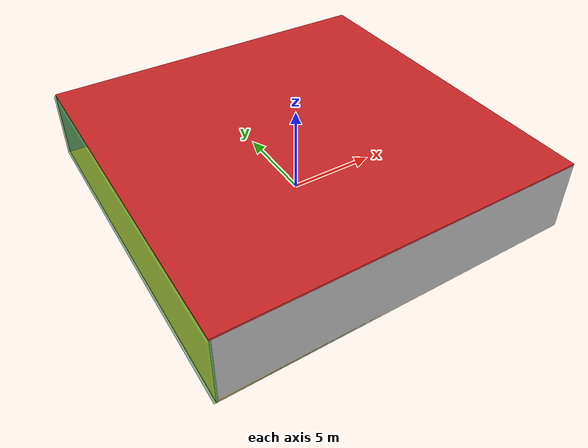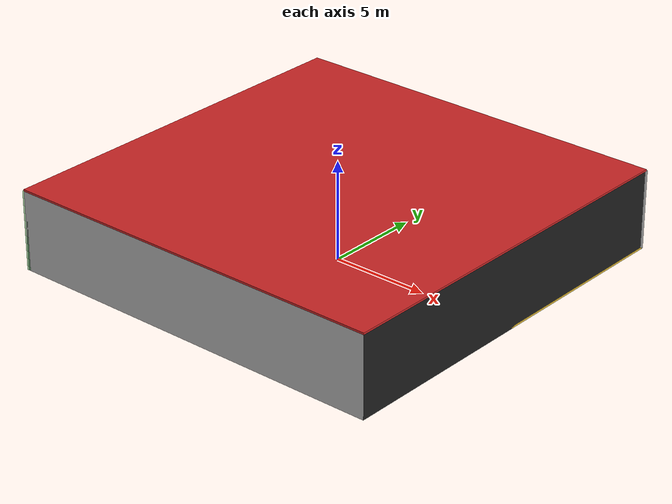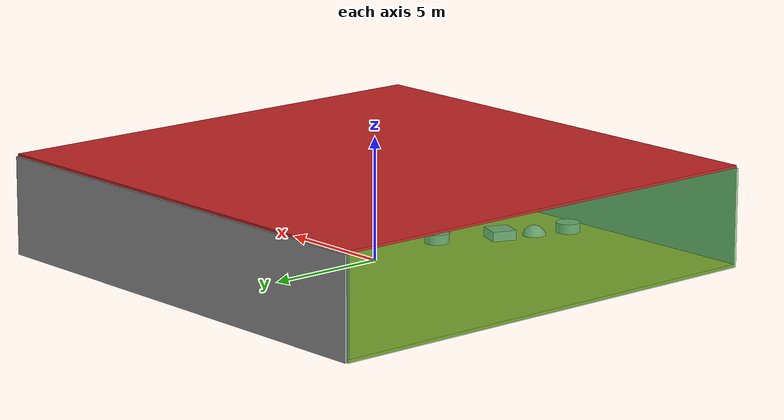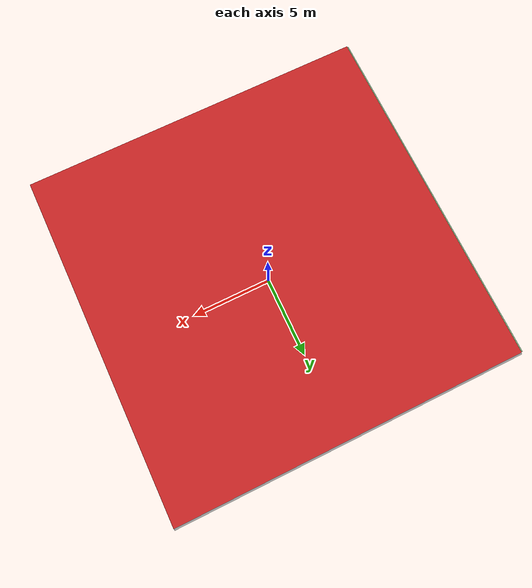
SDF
<sdf version="1.4">
 <world name="default">
  <physics type="ode">
   <max_step_size>0.001</max_step_size>
   <real_time_factor>1</real_time_factor>
   <real_time_update_rate>1000</real_time_update_rate>
   <gravity>0 0 -9.8</gravity>
  </physics>
  <scene><ambient>0.4 0.4 0.4 1</ambient><background>0.7 0.7 0.7 1</background><shadows>1</shadows></scene>
  <model name="Surrounding">
   <static>1</static>
   <link name="Ceiling">
    <collision name="Ceiling_Collision"><geometry><box><size>20 20 0.1</size></box></geometry></collision>
    <visual name="Ceiling_Visual">
     <geometry><box><size>20 20 0.1</size></box></geometry>
     <material>
      <script><uri>file://media/materials/scripts/gazebo.material</uri><name>Gazebo/RedBright</name></script>
     </material>
    </visual>
    <pose>0 0 4.05 0 0 0</pose>
   </link>
   <link name="Wall_South">
    <collision name="Wall_South_Collision">
     <geometry><box><size>20 0 4</size></box></geometry>
     <pose>0 0 2 0 -0 0</pose>
    </collision>
    <visual name="Wall_South_Visual">
     <pose>0 0 2 0 -0 0</pose>
     <geometry><box><size>20 0 4</size></box></geometry>
     <material>
      <script><uri>file://media/materials/scripts/gazebo.material</uri><name>Gazebo/LightOn</name></script>
     </material>
    </visual>
    <velocity_decay><linear>0</linear><angular>0</angular></velocity_decay>
    <pose>0 -10 0 0 -0 0</pose>
   </link>
   <link name="Wall_East">
    <collision name="Wall_21_Collision">
     <geometry><box><size>20 0 4</size></box></geometry>
     <pose>0 0 2 0 -0 0</pose>
    </collision>
    <visual name="Wall_21_Visual">
     <pose>0 0 2 0 -0 0</pose>
     <geometry><box><size>20 0 4</size></box></geometry>
     <material>
      <script><uri>file://media/materials/scripts/gazebo.material</uri><name>Gazebo/FlatBlack</name></script>
     </material>
    </visual>
    <velocity_decay><linear>0</linear><angular>0</angular></velocity_decay>
    <pose>10 0 0 0 -0 1.5708</pose>
   </link>
   <link name="Wall_North">
    <collision name="Wall_22_Collision">
     <geometry><box><size>20 0.2 4</size></box></geometry>
     <pose>0 0 2 0 -0 0</pose>
    </collision>
    <visual name="Wall_22_Visual">
     <pose>0 0 2 0 -0 0</pose>
     <geometry><box><size>20 0.2 4</size></box></geometry>
     <material>
      <script><uri>file://media/materials/scripts/gazebo.material</uri><name>Gazebo/GreyGradientSky</name></script>
     </material>
    </visual>
    <velocity_decay><linear>0</linear><angular>0</angular></velocity_decay>
    <pose>0 10 0 0 -0 0</pose>
   </link>
   <link name="Wall_West">
    <collision name="Wall_23_Collision">
     <geometry><box><size>20 0.2 4</size></box></geometry>
     <pose>0 0 2 0 -0 0</pose>
    </collision>
    <visual name="Wall_23_Visual">
     <pose>0 0 2 0 -0 0</pose>
     <geometry><box><size>20 0.2 4</size></box></geometry>
     <material>
      <script><uri>file://media/materials/scripts/gazebo.material</uri><name>Gazebo/GreenTransparent</name></script>
     </material>
    </visual>
    <velocity_decay><linear>0</linear><angular>0</angular></velocity_decay>
    <pose>-10 0 0 0 0 -1.5708</pose>
   </link>
   <link name="Ground_link">
    <collision name="collision">
     <pose>0 0 .05 0 -0 0</pose>
     <geometry><box><size>20 20 0.1</size></box></geometry>
    </collision>
    <visual name="visual">
     <pose>0 0 .05 0 -0 0</pose>
     <geometry><box><size>20 20 0.1</size></box></geometry>
     <material>
      <script><uri>file://media/materials/scripts/gazebo.material</uri><name>Gazebo/Gold</name></script>
     </material>
    </visual>
   </link>
   <static>1</static>
  </model>
  <spherical_coordinates>
   <surface_model>EARTH_WGS84</surface_model>
   <latitude_deg>0</latitude_deg>
   <longitude_deg>0</longitude_deg>
   <elevation>0</elevation>
   <heading_deg>0</heading_deg>
  </spherical_coordinates>
  <light name="lightball_0" type="diffuse">
   <diffuse>0.8 0.8 0.8 1</diffuse>
   <specular>0.2 0.2 0.2 1</specular>
   <attenuation>
    <range>100</range>
    <constant>0.7</constant>
    <linear>0.01</linear>
    <quadratic>0.001</quadratic>
   </attenuation>
   <direction>-0.5 0.1 -0.9</direction>
   <pose>-9.16770149812 2.51581660693 1.91776846579 0 0 0</pose>
  </light>
  <light name="lightball_1" type="diffuse">
   <diffuse>0.8 0.8 0.8 1</diffuse>
   <specular>0.2 0.2 0.2 1</specular>
   <attenuation>
    <range>100</range>
    <constant>0.7</constant>
    <linear>0.01</linear>
    <quadratic>0.001</quadratic>
   </attenuation>
   <direction>-0.5 0.1 -0.9</direction>
   <pose>6.05110673265 5.38903976124 0.500526147928 0 0 0</pose>
  </light>
  <light name="lightball_2" type="diffuse">
   <diffuse>0.8 0.8 0.8 1</diffuse>
   <specular>0.2 0.2 0.2 1</specular>
   <attenuation>
    <range>100</range>
    <constant>0.7</constant>
    <linear>0.01</linear>
    <quadratic>0.001</quadratic>
   </attenuation>
   <direction>-0.5 0.1 -0.9</direction>
   <pose>-8.58052432106 4.71871480036 1.89307048126 0 0 0</pose>
  </light>
  <light name="lightball_3" type="diffuse">
   <diffuse>0.8 0.8 0.8 1</diffuse>
   <specular>0.2 0.2 0.2 1</specular>
   <attenuation>
    <range>100</range>
    <constant>0.7</constant>
    <linear>0.01</linear>
    <quadratic>0.001</quadratic>
   </attenuation>
   <direction>-0.5 0.1 -0.9</direction>
   <pose>-6.24911337365 -2.7391387595 3.20815502493 0 0 0</pose>
  </light>
  <light name="lightball_4" type="diffuse">
   <diffuse>0.8 0.8 0.8 1</diffuse>
   <specular>0.2 0.2 0.2 1</specular>
   <attenuation>
    <range>100</range>
    <constant>0.7</constant>
    <linear>0.01</linear>
    <quadratic>0.001</quadratic>
   </attenuation>
   <direction>-0.5 0.1 -0.9</direction>
   <pose>6.51283153587 -7.69370661518 2.87907725618 0 0 0</pose>
  </light>
  <light name="lightball_5" type="diffuse">
   <diffuse>0.8 0.8 0.8 1</diffuse>
   <specular>0.2 0.2 0.2 1</specular>
   <attenuation>
    <range>100</range>
    <constant>0.7</constant>
    <linear>0.01</linear>
    <quadratic>0.001</quadratic>
   </attenuation>
   <direction>-0.5 0.1 -0.9</direction>
   <pose>4.79166378488 1.14975381521 2.054661033 0 0 0</pose>
  </light>
  <light name="lightball_6" type="diffuse">
   <diffuse>0.8 0.8 0.8 1</diffuse>
   <specular>0.2 0.2 0.2 1</specular>
   <attenuation>
    <range>100</range>
    <constant>0.7</constant>
    <linear>0.01</linear>
    <quadratic>0.001</quadratic>
   </attenuation>
   <direction>-0.5 0.1 -0.9</direction>
   <pose>-8.01257719659 2.32481457591 0.575242612397 0 0 0</pose>
  </light>
  <light name="lightball_7" type="diffuse">
   <diffuse>0.8 0.8 0.8 1</diffuse>
   <specular>0.2 0.2 0.2 1</specular>
   <attenuation>
    <range>100</range>
    <constant>0.7</constant>
    <linear>0.01</linear>
    <quadratic>0.001</quadratic>
   </attenuation>
   <direction>-0.5 0.1 -0.9</direction>
   <pose>-7.63248296177 -0.54159857029 2.42922225852 0 0 0</pose>
  </light>
  <light name="lightball_8" type="diffuse">
   <diffuse>0.8 0.8 0.8 1</diffuse>
   <specular>0.2 0.2 0.2 1</specular>
   <attenuation>
    <range>100</range>
    <constant>0.7</constant>
    <linear>0.01</linear>
    <quadratic>0.001</quadratic>
   </attenuation>
   <direction>-0.5 0.1 -0.9</direction>
   <pose>-7.42327094369 0.128956006986 2.26485832378 0 0 0</pose>
  </light>
  <light name="lightball_9" type="diffuse">
   <diffuse>0.8 0.8 0.8 1</diffuse>
   <specular>0.2 0.2 0.2 1</specular>
   <attenuation>
    <range>100</range>
    <constant>0.7</constant>
    <linear>0.01</linear>
    <quadratic>0.001</quadratic>
   </attenuation>
   <direction>-0.5 0.1 -0.9</direction>
   <pose>-9.44196896024 -9.96595761651 2.592869578 0 0 0</pose>
  </light>
  <light name="lightball_10" type="diffuse">
   <diffuse>0.8 0.8 0.8 1</diffuse>
   <specular>0.2 0.2 0.2 1</specular>
   <attenuation>
    <range>100</range>
    <constant>0.7</constant>
    <linear>0.01</linear>
    <quadratic>0.001</quadratic>
   </attenuation>
   <direction>-0.5 0.1 -0.9</direction>
   <pose>-1.5232240949 -5.48129304181 2.79213834666 0 0 0</pose>
  </light>
  <light name="lightball_11" type="diffuse">
   <diffuse>0.8 0.8 0.8 1</diffuse>
   <specular>0.2 0.2 0.2 1</specular>
   <attenuation>
    <range>100</range>
    <constant>0.7</constant>
    <linear>0.01</linear>
    <quadratic>0.001</quadratic>
   </attenuation>
   <direction>-0.5 0.1 -0.9</direction>
   <pose>6.27222480807 -4.91424244818 3.30119381937 0 0 0</pose>
  </light>
  <light name="lightball_12" type="diffuse">
   <diffuse>0.8 0.8 0.8 1</diffuse>
   <specular>0.2 0.2 0.2 1</specular>
   <attenuation>
    <range>100</range>
    <constant>0.7</constant>
    <linear>0.01</linear>
    <quadratic>0.001</quadratic>
   </attenuation>
   <direction>-0.5 0.1 -0.9</direction>
   <pose>3.98440947266 -2.07574169566 0.528784258674 0 0 0</pose>
  </light>
  <include>
   <uri>model://textured_shapes</uri>
   <pose>-1.49309646069 -7.26100520555 0 0 0 2.79168654576</pose>
  </include>
  <include>
   <uri>model://textured_shapes</uri>
   <pose>1.25239236576 -4.52137838609 0 0 0 0.792066360354</pose>
  </include>
  <include><uri>model://table</uri><pose>7.4298641686 2.2064289247 0 0 0 2.96191613603</pose></include>
 </world>
</sdf>

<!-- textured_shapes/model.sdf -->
<sdf version="1.6">
  <model name="textured_shapes">
    <pose>0 0 0.5 0 0 0</pose>
    <link name="box">
      <pose>0 -1.5 0 0 0 0</pose>
      <collision name="collision">
        <geometry>
          <box>
            <size>1 1 1</size>
          </box>
        </geometry>
      </collision>
      <visual name="visual">
        <geometry>
          <box>
            <size>1 1 1</size>
          </box>
        </geometry>
        <material>
          <script>
            <uri>model://../model_source/models/textured_shapes/materials/scripts</uri>
            <uri>model://../model_source/models/textured_shapes/materials/textures</uri>
            <name>TexturedShape/Squares</name>
          </script>
        </material>
      </visual>
    </link>
    <link name="sphere">
      <collision name="collision">
        <geometry>
          <sphere>
            <radius>0.5</radius>
          </sphere>
        </geometry>
      </collision>
      <visual name="visual">
        <geometry>
          <sphere>
            <radius>0.5</radius>
          </sphere>
        </geometry>
        <material>
          <script>
            <uri>model://../model_source/models/textured_shapes/materials/scripts</uri>
            <uri>model://../model_source/models/textured_shapes/materials/textures</uri>
            <name>TexturedShape/Squares</name>
          </script>
        </material>
      </visual>
    </link>
    <link name="cylinder">
      <pose>0 1.5 0 0 0 0</pose>
      <collision name="collision">
        <geometry>
          <cylinder>
            <radius>0.5</radius>
            <length>1</length>
          </cylinder>
        </geometry>
      </collision>
      <visual name="visual">
        <geometry>
          <cylinder>
            <radius>0.5</radius>
            <length>1</length>
          </cylinder>
        </geometry>
        <material>
          <script>
            <uri>model://../model_source/models/textured_shapes/materials/scripts</uri>
            <uri>model://../model_source/models/textured_shapes/materials/textures</uri>
            <name>TexturedShape/Squares</name>
          </script>
        </material>
      </visual>
    </link>
  </model>
</sdf>

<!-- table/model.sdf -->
<sdf version="1.5">
  <model name="table">
    <static>true</static>
    <link name="link">
      <collision name="surface">
        <pose>0 0 1.0 0 0 0</pose>
        <geometry>
          <box>
            <size>1.5 0.8 0.03</size>
          </box>
        </geometry>
        <surface>
          <friction>
            <ode>
              <mu>0.6</mu>
              <mu2>0.6</mu2>
            </ode>
          </friction>
        </surface>
      </collision>
      <visual name="visual1">
        <pose>0 0 1.0 0 0 0</pose>
        <geometry>
          <box>
            <size>1.5 0.8 0.03</size>
          </box>
        </geometry>
        <material>
          <script>
            <uri>model://media/materials/scripts/gazebo.material</uri>
            <name>Gazebo/Wood</name>
          </script>
        </material>
      </visual>
      <collision name="front_left_leg">
        <pose>0.68 0.38 0.5 0 0 0</pose>
        <geometry>
          <cylinder>
            <radius>0.02</radius>
            <length>1.0</length>
          </cylinder>
        </geometry>
      </collision>
      <visual name="front_left_leg">
        <pose>0.68 0.38 0.5 0 0 0</pose>
        <geometry>
          <cylinder>
            <radius>0.02</radius>
            <length>1.0</length>
          </cylinder>
        </geometry>
        <material>
          <script>
            <uri>model://media/materials/scripts/gazebo.material</uri>
            <name>Gazebo/Grey</name>
          </script>
        </material>
      </visual>
      <collision name="front_right_leg">
        <pose>0.68 -0.38 0.5 0 0 0</pose>
        <geometry>
          <cylinder>
            <radius>0.02</radius>
            <length>1.0</length>
          </cylinder>
        </geometry>
      </collision>
      <visual name="front_right_leg">
        <pose>0.68 -0.38 0.5 0 0 0</pose>
        <geometry>
          <cylinder>
            <radius>0.02</radius>
            <length>1.0</length>
          </cylinder>
        </geometry>
        <material>
          <script>
            <uri>model://media/materials/scripts/gazebo.material</uri>
            <name>Gazebo/Grey</name>
          </script>
        </material>
      </visual>
      <collision name="back_right_leg">
        <pose>-0.68 -0.38 0.5 0 0 0</pose>
        <geometry>
          <cylinder>
            <radius>0.02</radius>
            <length>1.0</length>
          </cylinder>
        </geometry>
      </collision>
      <visual name="back_right_leg">
        <pose>-0.68 -0.38 0.5 0 0 0</pose>
        <geometry>
          <cylinder>
            <radius>0.02</radius>
            <length>1.0</length>
          </cylinder>
        </geometry>
        <material>
          <script>
            <uri>model://media/materials/scripts/gazebo.material</uri>
            <name>Gazebo/Grey</name>
          </script>
        </material>
      </visual>
      <collision name="back_left_leg">
        <pose>-0.68 0.38 0.5 0 0 0</pose>
        <geometry>
          <cylinder>
            <radius>0.02</radius>
            <length>1.0</length>
          </cylinder>
        </geometry>
      </collision>
      <visual name="back_left_leg">
        <pose>-0.68 0.38 0.5 0 0 0</pose>
        <geometry>
          <cylinder>
            <radius>0.02</radius>
            <length>1.0</length>
          </cylinder>
        </geometry>
        <material>
          <script>
            <uri>model://media/materials/scripts/gazebo.material</uri>
            <name>Gazebo/Grey</name>
          </script>
        </material>
      </visual>
    </link>
  </model>
</sdf>
